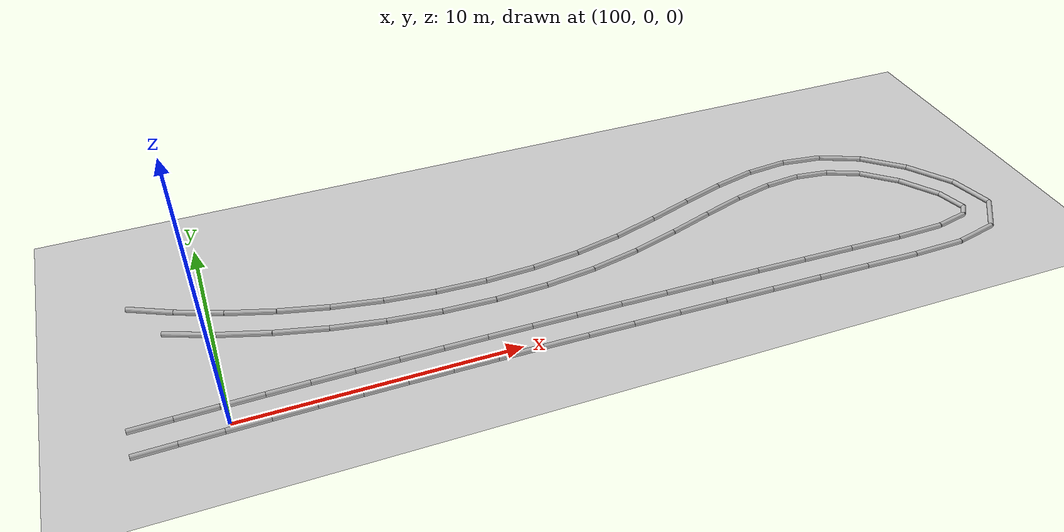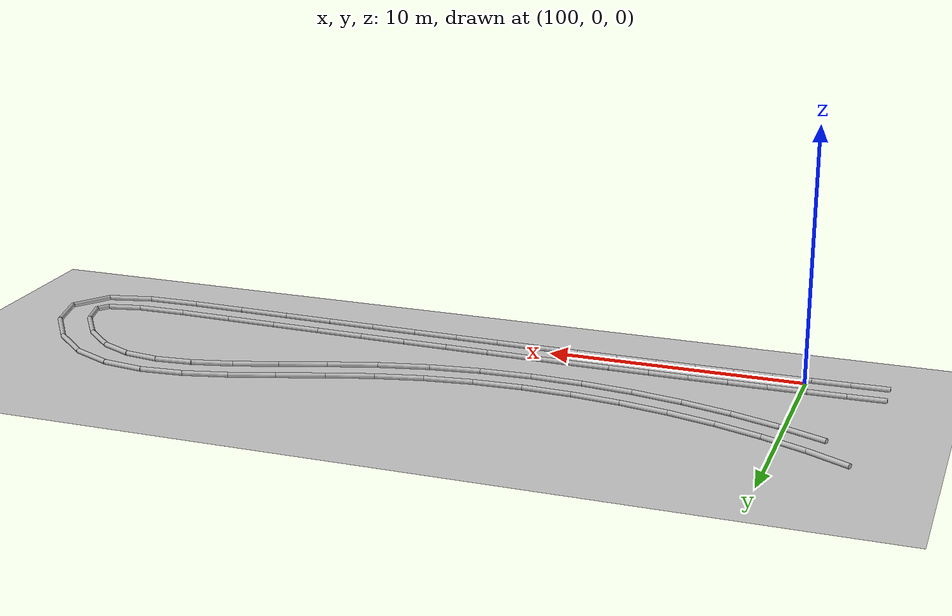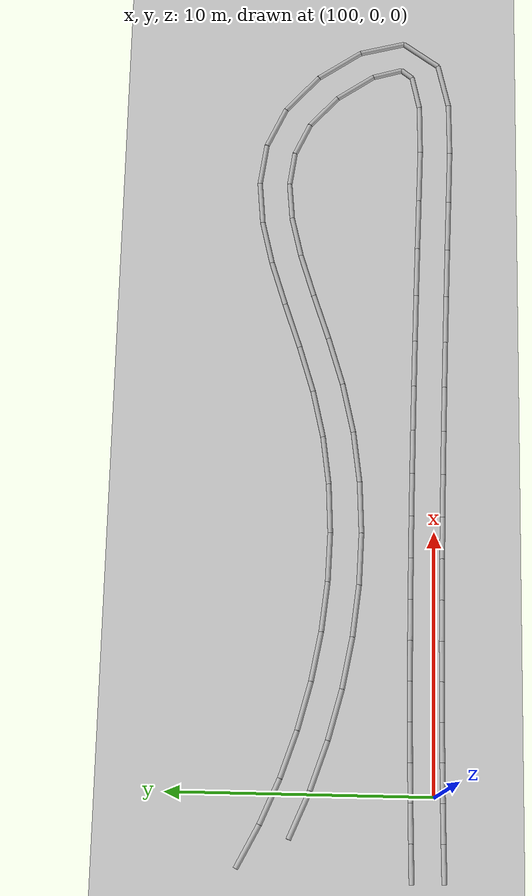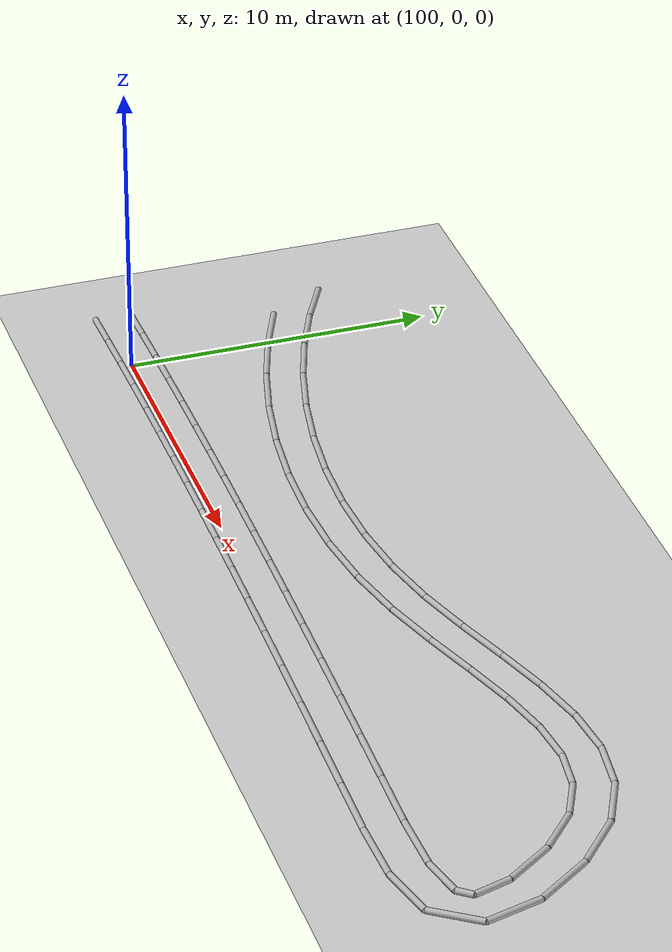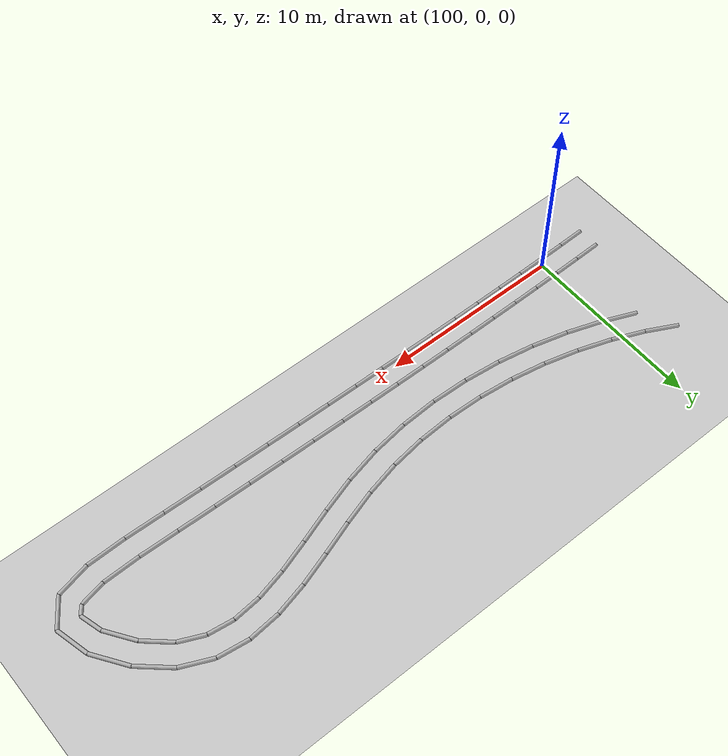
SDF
<sdf version="1.6">
 <world name="default">
  <model name="ground_plane">
   <static>true</static>
   <link name="link">
    <collision name="collision">
     <geometry><plane><normal>0 0 1</normal><size>5000 5000</size></plane></geometry>
     <surface>
      <friction>
       <ode><mu>50</mu></ode>
       <bullet><friction>1</friction><rolling_friction>0.1</rolling_friction></bullet>
      </friction>
     </surface>
    </collision>
    <visual name="visual">
     <geometry><plane><normal>0 0 1</normal><size>5000 5000</size></plane></geometry>
     <material>
      <ambient>0.8 0.8 0.8 1</ambient>
      <diffuse>0.8 0.8 0.8 1</diffuse>
      <specular>0.8 0.8 0.8 1</specular>
     </material>
    </visual>
    <inertial>
     <mass>1</mass>
     <inertia><ixx>1</ixx><ixy>0</ixy><ixz>0</ixz><iyy>1</iyy><iyz>0</iyz><izz>1</izz></inertia>
    </inertial>
   </link>
  </model>
  <model name="line_model">
   <static>true</static>
   <link name="cylinder_(96.88214407625512, -0.37762405332056653)_(98.34170095905127, -0.3479384697803022)">
    <pose>97.6119225176532 -0.36278126155043433 0.05 0 1.5707963267948966 0.02033596059653852</pose>
    <visual name="visual">
     <geometry><cylinder><radius>0.1</radius><length>1.4598587356274375</length></cylinder></geometry>
    </visual>
    <collision name="collision">
     <geometry><cylinder><radius>0.1</radius><length>1.4598587356274375</length></cylinder></geometry>
    </collision>
   </link>
   <link name="cylinder_(98.34170095905127, -0.3479384697803022)_(99.8058994264758, -0.3243952312302968)">
    <pose>99.07380019276354 -0.3361668505052995 0.05 0 1.5707963267948966 0.01607788179667908</pose>
    <visual name="visual">
     <geometry><cylinder><radius>0.1</radius><length>1.4643877342049092</length></cylinder></geometry>
    </visual>
    <collision name="collision">
     <geometry><cylinder><radius>0.1</radius><length>1.4643877342049092</length></cylinder></geometry>
    </collision>
   </link>
   <link name="cylinder_(99.8058994264758, -0.3243952312302968)_(101.27982941718481, -0.30686323552430333)">
    <pose>100.5428644218303 -0.3156292333773001 0.05 0 1.5707963267948966 0.011894166650527716</pose>
    <visual name="visual">
     <geometry><cylinder><radius>0.1</radius><length>1.4740342561775481</length></cylinder></geometry>
    </visual>
    <collision name="collision">
     <geometry><cylinder><radius>0.1</radius><length>1.4740342561775481</length></cylinder></geometry>
    </collision>
   </link>
   <link name="cylinder_(101.27982941718481, -0.30686323552430333)_(102.76857904481969, -0.29521180231533845)">
    <pose>102.02420423100224 -0.3010375189198209 0.05 0 1.5707963267948966 0.007826161708405232</pose>
    <visual name="visual">
     <geometry><cylinder><radius>0.1</radius><length>1.4887952208677993</length></cylinder></geometry>
    </visual>
    <collision name="collision">
     <geometry><cylinder><radius>0.1</radius><length>1.4887952208677993</length></cylinder></geometry>
    </collision>
   </link>
   <link name="cylinder_(102.76857904481969, -0.29521180231533845)_(104.27723386987995, -0.2893106097438739)">
    <pose>103.52290645734982 -0.29226120602960615 0.05 0 1.5707963267948966 0.003911539191771642</pose>
    <visual name="visual">
     <geometry><cylinder><radius>0.1</radius><length>1.508666366447988</length></cylinder></geometry>
    </visual>
    <collision name="collision">
     <geometry><cylinder><radius>0.1</radius><length>1.508666366447988</length></cylinder></geometry>
    </collision>
   </link>
   <link name="cylinder_(104.27723386987995, -0.2893106097438739)_(105.81087634020355, -0.2890296105546082)">
    <pose>105.04405510504175 -0.28917011014924104 0.05 0 1.5707963267948966 0.00018322339890728905</pose>
    <visual name="visual">
     <geometry><cylinder><radius>0.1</radius><length>1.5336424960664123</length></cylinder></geometry>
    </visual>
    <collision name="collision">
     <geometry><cylinder><radius>0.1</radius><length>1.5336424960664123</length></cylinder></geometry>
    </collision>
   </link>
   <link name="cylinder_(105.81087634020355, -0.2890296105546082)_(107.37458542511108, -0.29423893760013436)">
    <pose>106.59273088265732 -0.2916342740773713 0.05 0 1.5707963267948966 -0.0033313791066400004</pose>
    <visual name="visual">
     <geometry><cylinder><radius>0.1</radius><length>1.5637177620371938</length></cylinder></geometry>
    </visual>
    <collision name="collision">
     <geometry><cylinder><radius>0.1</radius><length>1.5637177620371938</length></cylinder></geometry>
    </collision>
   </link>
   <link name="cylinder_(107.37458542511108, -0.29423893760013436)_(108.97343644856046, -0.3048088087025771)">
    <pose>108.17401093683577 -0.29952387315135576 0.05 0 1.5707963267948966 -0.006610820500972128</pose>
    <visual name="visual">
     <geometry><cylinder><radius>0.1</radius><length>1.5988859613369137</length></cylinder></geometry>
    </visual>
    <collision name="collision">
     <geometry><cylinder><radius>0.1</radius><length>1.5988859613369137</length></cylinder></geometry>
    </collision>
   </link>
   <link name="cylinder_(108.97343644856046, -0.3048088087025771)_(110.61250110878882, -0.3206094394555555)">
    <pose>109.79296877867463 -0.31270912407906626 0.05 0 1.5707963267948966 -0.009639730336424077</pose>
    <visual name="visual">
     <geometry><cylinder><radius>0.1</radius><length>1.6391408177279005</length></cylinder></geometry>
    </visual>
    <collision name="collision">
     <geometry><cylinder><radius>0.1</radius><length>1.6391408177279005</length></cylinder></geometry>
    </collision>
   </link>
   <link name="cylinder_(110.61250110878882, -0.3206094394555555)_(112.2968476580367, -0.3415109702252698)">
    <pose>111.45467438341277 -0.33106020484041265 0.05 0 1.5707963267948966 -0.012408644765352111</pose>
    <visual name="visual">
     <geometry><cylinder><radius>0.1</radius><length>1.684476230747038</length></cylinder></geometry>
    </visual>
    <collision name="collision">
     <geometry><cylinder><radius>0.1</radius><length>1.684476230747038</length></cylinder></geometry>
    </collision>
   </link>
   <link name="cylinder_(112.2968476580367, -0.3415109702252698)_(114.03154120718891, -0.36738341090692617)">
    <pose>113.1641944326128 -0.35444719056609797 0.05 0 1.5707963267948966 -0.014913598152648682</pose>
    <visual name="visual">
     <geometry><cylinder><radius>0.1</radius><length>1.7348864783198705</length></cylinder></geometry>
    </visual>
    <collision name="collision">
     <geometry><cylinder><radius>0.1</radius><length>1.7348864783198705</length></cylinder></geometry>
    </collision>
   </link>
   <link name="cylinder_(114.03154120718891, -0.36738341090692617)_(115.82164411662662, -0.39809660441460293)">
    <pose>114.92659266190776 -0.38274000766076455 0.05 0 1.5707963267948966 -0.01715553904425735</pose>
    <visual name="visual">
     <geometry><cylinder><radius>0.1</radius><length>1.7903663665944973</length></cylinder></geometry>
    </visual>
    <collision name="collision">
     <geometry><cylinder><radius>0.1</radius><length>1.7903663665944973</length></cylinder></geometry>
    </collision>
   </link>
   <link name="cylinder_(115.82164411662662, -0.39809660441460293)_(117.67221643557166, -0.4335202077866283)">
    <pose>116.74693027609914 -0.41580840610061565 0.05 0 1.5707963267948966 -0.019139634468451266</pose>
    <visual name="visual">
     <geometry><cylinder><radius>0.1</radius><length>1.850911326704087</length></cylinder></geometry>
    </visual>
    <collision name="collision">
     <geometry><cylinder><radius>0.1</radius><length>1.850911326704087</length></cylinder></geometry>
    </collision>
   </link>
   <link name="cylinder_(117.67221643557166, -0.4335202077866283)_(119.58831635652821, -0.4735236883529746)">
    <pose>118.63026639604993 -0.45352194806980145 0.05 0 1.5707963267948966 -0.020874521997675453</pose>
    <visual name="visual">
     <geometry><cylinder><radius>0.1</radius><length>1.9165174628860382</length></cylinder></geometry>
    </visual>
    <collision name="collision">
     <geometry><cylinder><radius>0.1</radius><length>1.9165174628860382</length></cylinder></geometry>
    </collision>
   </link>
   <link name="cylinder_(119.58831635652821, -0.4735236883529746)_(121.57500065775352, -0.5179763316530697)">
    <pose>120.58165850714087 -0.4957500100030221 0.05 0 1.5707963267948966 -0.0223715600106605</pose>
    <visual name="visual">
     <geometry><cylinder><radius>0.1</radius><length>1.987181559453354</length></cylinder></geometry>
    </visual>
    <collision name="collision">
     <geometry><cylinder><radius>0.1</radius><length>1.987181559453354</length></cylinder></geometry>
    </collision>
   </link>
   <link name="cylinder_(121.57500065775352, -0.5179763316530697)_(123.63732511379524, -0.5667472576146395)">
    <pose>122.60616288577438 -0.5423617946338546 0.05 0 1.5707963267948966 -0.023644115314831623</pose>
    <visual name="visual">
     <geometry><cylinder><radius>0.1</radius><length>2.0629010556027483</length></cylinder></geometry>
    </visual>
    <collision name="collision">
     <geometry><cylinder><radius>0.1</radius><length>2.0629010556027483</length></cylinder></geometry>
    </collision>
   </link>
   <link name="cylinder_(123.63732511379524, -0.5667472576146395)_(125.78112356087561, -0.6178366603438624)">
    <pose>124.70922433733543 -0.592291958979251 0.05 0 1.5707963267948966 -0.023826742846093093</pose>
    <visual name="visual">
     <geometry><cylinder><radius>0.1</radius><length>2.144407122907271</length></cylinder></geometry>
    </visual>
    <collision name="collision">
     <geometry><cylinder><radius>0.1</radius><length>2.144407122907271</length></cylinder></geometry>
    </collision>
   </link>
   <link name="cylinder_(125.78112356087561, -0.6178366603438624)_(127.89645645212491, -0.5730451484775761)">
    <pose>126.83879000650026 -0.5954409044107193 0.05 0 1.5707963267948966 0.021171523168343864</pose>
    <visual name="visual">
     <geometry><cylinder><radius>0.1</radius><length>2.1158070612266067</length></cylinder></geometry>
    </visual>
    <collision name="collision">
     <geometry><cylinder><radius>0.1</radius><length>2.1158070612266067</length></cylinder></geometry>
    </collision>
   </link>
   <link name="cylinder_(127.89645645212491, -0.5730451484775761)_(129.6817796624254, -0.14383697907897117)">
    <pose>128.78911805727518 -0.35844106377827367 0.05 0 1.5707963267948966 0.23593188219633704</pose>
    <visual name="visual">
     <geometry><cylinder><radius>0.1</radius><length>1.8361913347786498</length></cylinder></geometry>
    </visual>
    <collision name="collision">
     <geometry><cylinder><radius>0.1</radius><length>1.8361913347786498</length></cylinder></geometry>
    </collision>
   </link>
   <link name="cylinder_(129.6817796624254, -0.14383697907897117)_(130.66364236745954, 1.270782619576106)">
    <pose>130.17271101494248 0.5634728202485675 0.05 0 1.5707963267948966 0.9640528906943144</pose>
    <visual name="visual">
     <geometry><cylinder><radius>0.1</radius><length>1.7219764749949387</length></cylinder></geometry>
    </visual>
    <collision name="collision">
     <geometry><cylinder><radius>0.1</radius><length>1.7219764749949387</length></cylinder></geometry>
    </collision>
   </link>
   <link name="cylinder_(130.66364236745954, 1.270782619576106)_(130.21157724533143, 3.0610778547621935)">
    <pose>130.43760980639547 2.1659302371691496 0.05 0 1.5707963267948966 1.8181347218721662</pose>
    <visual name="visual">
     <geometry><cylinder><radius>0.1</radius><length>1.8464885333450405</length></cylinder></geometry>
    </visual>
    <collision name="collision">
     <geometry><cylinder><radius>0.1</radius><length>1.8464885333450405</length></cylinder></geometry>
    </collision>
   </link>
   <link name="cylinder_(130.21157724533143, 3.0610778547621935)_(129.05093585215613, 4.774909754591945)">
    <pose>129.63125654874378 3.9179938046770695 0.05 0 1.5707963267948966 2.1660696035708655</pose>
    <visual name="visual">
     <geometry><cylinder><radius>0.1</radius><length>2.0698570541044496</length></cylinder></geometry>
    </visual>
    <collision name="collision">
     <geometry><cylinder><radius>0.1</radius><length>2.0698570541044496</length></cylinder></geometry>
    </collision>
   </link>
   <link name="cylinder_(129.05093585215613, 4.774909754591945)_(127.5732845417734, 6.097777010848196)">
    <pose>128.31211019696477 5.436343382720071 0.05 0 1.5707963267948966 2.411408097916455</pose>
    <visual name="visual">
     <geometry><cylinder><radius>0.1</radius><length>1.983287970202695</length></cylinder></geometry>
    </visual>
    <collision name="collision">
     <geometry><cylinder><radius>0.1</radius><length>1.983287970202695</length></cylinder></geometry>
    </collision>
   </link>
   <link name="cylinder_(127.5732845417734, 6.097777010848196)_(125.96643759129199, 6.84285203955191)">
    <pose>126.7698610665327 6.4703145252000525 0.05 0 1.5707963267948966 2.7074145870735347</pose>
    <visual name="visual">
     <geometry><cylinder><radius>0.1</radius><length>1.7711843271295207</length></cylinder></geometry>
    </visual>
    <collision name="collision">
     <geometry><cylinder><radius>0.1</radius><length>1.7711843271295207</length></cylinder></geometry>
    </collision>
   </link>
   <link name="cylinder_(125.96643759129199, 6.84285203955191)_(124.29264731617415, 7.077410164983204)">
    <pose>125.12954245373308 6.960131102267557 0.05 0 1.5707963267948966 3.002363416006614</pose>
    <visual name="visual">
     <geometry><cylinder><radius>0.1</radius><length>1.6901453781509126</length></cylinder></geometry>
    </visual>
    <collision name="collision">
     <geometry><cylinder><radius>0.1</radius><length>1.6901453781509126</length></cylinder></geometry>
    </collision>
   </link>
   <link name="cylinder_(124.29264731617415, 7.077410164983204)_(122.59406926648981, 6.922670162820596)">
    <pose>123.44335829133198 7.0000401639019 0.05 0 1.5707963267948966 -3.050743692901657</pose>
    <visual name="visual">
     <geometry><cylinder><radius>0.1</radius><length>1.7056118723609868</length></cylinder></geometry>
    </visual>
    <collision name="collision">
     <geometry><cylinder><radius>0.1</radius><length>1.7056118723609868</length></cylinder></geometry>
    </collision>
   </link>
   <link name="cylinder_(122.59406926648981, 6.922670162820596)_(120.87566260818448, 6.505474617164372)">
    <pose>121.73486593733715 6.714072389992484 0.05 0 1.5707963267948966 -2.9034203160265335</pose>
    <visual name="visual">
     <geometry><cylinder><radius>0.1</radius><length>1.7683250737982183</length></cylinder></geometry>
    </visual>
    <collision name="collision">
     <geometry><cylinder><radius>0.1</radius><length>1.7683250737982183</length></cylinder></geometry>
    </collision>
   </link>
   <link name="cylinder_(120.87566260818448, 6.505474617164372)_(119.12994849545089, 5.938243972498735)">
    <pose>120.00280555181769 6.221859294831553 0.05 0 1.5707963267948966 -2.827426266306031</pose>
    <visual name="visual">
     <geometry><cylinder><radius>0.1</radius><length>1.8355566914821877</length></cylinder></geometry>
    </visual>
    <collision name="collision">
     <geometry><cylinder><radius>0.1</radius><length>1.8355566914821877</length></cylinder></geometry>
    </collision>
   </link>
   <link name="cylinder_(119.12994849545089, 5.938243972498735)_(117.3525083056353, 5.323952500630975)">
    <pose>118.2412284005431 5.6310982365648545 0.05 0 1.5707963267948966 -2.8088389288820825</pose>
    <visual name="visual">
     <geometry><cylinder><radius>0.1</radius><length>1.8805976817972392</length></cylinder></geometry>
    </visual>
    <collision name="collision">
     <geometry><cylinder><radius>0.1</radius><length>1.8805976817972392</length></cylinder></geometry>
    </collision>
   </link>
   <link name="cylinder_(117.3525083056353, 5.323952500630975)_(115.54418601672032, 4.761281783702551)">
    <pose>116.44834716117781 5.042617142166764 0.05 0 1.5707963267948966 -2.839932485316587</pose>
    <visual name="visual">
     <geometry><cylinder><radius>0.1</radius><length>1.893839443109013</length></cylinder></geometry>
    </visual>
    <collision name="collision">
     <geometry><cylinder><radius>0.1</radius><length>1.893839443109013</length></cylinder></geometry>
    </collision>
   </link>
   <link name="cylinder_(115.54418601672032, 4.761281783702551)_(113.70356340528409, 4.340110366181804)">
    <pose>114.6238747110022 4.550696074942177 0.05 0 1.5707963267948966 -2.9166451900477237</pose>
    <visual name="visual">
     <geometry><cylinder><radius>0.1</radius><length>1.8881941003685947</length></cylinder></geometry>
    </visual>
    <collision name="collision">
     <geometry><cylinder><radius>0.1</radius><length>1.8881941003685947</length></cylinder></geometry>
    </collision>
   </link>
   <link name="cylinder_(113.70356340528409, 4.340110366181804)_(111.81949316952812, 4.088435412354135)">
    <pose>112.7615282874061 4.21427288926797 0.05 0 1.5707963267948966 -3.0087983269038854</pose>
    <visual name="visual">
     <geometry><cylinder><radius>0.1</radius><length>1.9008053387040236</length></cylinder></geometry>
    </visual>
    <collision name="collision">
     <geometry><cylinder><radius>0.1</radius><length>1.9008053387040236</length></cylinder></geometry>
    </collision>
   </link>
   <link name="cylinder_(111.81949316952812, 4.088435412354135)_(109.90768209212649, 3.999303500268271)">
    <pose>110.86358763082731 4.043869456311203 0.05 0 1.5707963267948966 -3.095004672877772</pose>
    <visual name="visual">
     <geometry><cylinder><radius>0.1</radius><length>1.9138876909128282</length></cylinder></geometry>
    </visual>
    <collision name="collision">
     <geometry><cylinder><radius>0.1</radius><length>1.9138876909128282</length></cylinder></geometry>
    </collision>
   </link>
   <link name="cylinder_(109.90768209212649, 3.999303500268271)_(107.98652220753964, 4.0652212794815785)">
    <pose>108.94710214983306 4.032262389874925 0.05 0 1.5707963267948966 3.107294659860771</pose>
    <visual name="visual">
     <geometry><cylinder><radius>0.1</radius><length>1.922290419203664</length></cylinder></geometry>
    </visual>
    <collision name="collision">
     <geometry><cylinder><radius>0.1</radius><length>1.922290419203664</length></cylinder></geometry>
    </collision>
   </link>
   <link name="cylinder_(107.98652220753964, 4.0652212794815785)_(106.0745752576311, 4.2784508975907665)">
    <pose>107.03054873258537 4.171836088536173 0.05 0 1.5707963267948966 3.030526746693869</pose>
    <visual name="visual">
     <geometry><cylinder><radius>0.1</radius><length>1.9238004078655244</length></cylinder></geometry>
    </visual>
    <collision name="collision">
     <geometry><cylinder><radius>0.1</radius><length>1.9238004078655244</length></cylinder></geometry>
    </collision>
   </link>
   <link name="cylinder_(106.0745752576311, 4.2784508975907665)_(104.1904945715348, 4.631012509128226)">
    <pose>105.13253491458295 4.454731703359496 0.05 0 1.5707963267948966 2.956605447174103</pose>
    <visual name="visual">
     <geometry><cylinder><radius>0.1</radius><length>1.9167836919305694</length></cylinder></geometry>
    </visual>
    <collision name="collision">
     <geometry><cylinder><radius>0.1</radius><length>1.9167836919305694</length></cylinder></geometry>
    </collision>
   </link>
   <link name="cylinder_(104.1904945715348, 4.631012509128226)_(102.35297635803207, 5.114691320290366)">
    <pose>103.27173546478343 4.872851914709296 0.05 0 1.5707963267948966 2.884207158068229</pose>
    <visual name="visual">
     <geometry><cylinder><radius>0.1</radius><length>1.9001100961053539</length></cylinder></geometry>
    </visual>
    <collision name="collision">
     <geometry><cylinder><radius>0.1</radius><length>1.9001100961053539</length></cylinder></geometry>
    </collision>
   </link>
   <link name="cylinder_(102.35297635803207, 5.114691320290366)_(100.5807294772425, 5.721036594928918)">
    <pose>101.46685291763728 5.417863957609642 0.05 0 1.5707963267948966 2.8119428435357023</pose>
    <visual name="visual">
     <geometry><cylinder><radius>0.1</radius><length>1.8731026663119268</length></cylinder></geometry>
    </visual>
    <collision name="collision">
     <geometry><cylinder><radius>0.1</radius><length>1.8731026663119268</length></cylinder></geometry>
    </collision>
   </link>
   <link name="cylinder_(100.5807294772425, 5.721036594928918)_(98.89245187395298, 6.441345334439175)">
    <pose>99.73659067559774 6.081190964684047 0.05 0 1.5707963267948966 2.7383227161611647</pose>
    <visual name="visual">
     <geometry><cylinder><radius>0.1</radius><length>1.8355178958495237</length></cylinder></geometry>
    </visual>
    <collision name="collision">
     <geometry><cylinder><radius>0.1</radius><length>1.8355178958495237</length></cylinder></geometry>
    </collision>
   </link>
   <link name="cylinder_(98.89245187395298, 6.441345334439175)_(97.30680030457754, 7.2666266332350276)">
    <pose>98.09962608926526 6.853985983837101 0.05 0 1.5707963267948966 2.6617048468655846</pose>
    <visual name="visual">
     <geometry><cylinder><radius>0.1</radius><length>1.7875626203310964</length></cylinder></geometry>
    </visual>
    <collision name="collision">
     <geometry><cylinder><radius>0.1</radius><length>1.7875626203310964</length></cylinder></geometry>
    </collision>
   </link>
   <link name="cylinder_(96.85517180297238, 0.8220727819148863)_(98.31986310493626, 0.8518628088186381)">
    <pose>97.58751745395432 0.8369677953667622 0.05 0 1.5707963267948966 0.02033597125772061</pose>
    <visual name="visual">
     <geometry><cylinder><radius>0.1</radius><length>1.4649942169686463</length></cylinder></geometry>
    </visual>
    <collision name="collision">
     <geometry><cylinder><radius>0.1</radius><length>1.4649942169686463</length></cylinder></geometry>
    </collision>
   </link>
   <link name="cylinder_(98.31986310493626, 0.8518628088186381)_(99.78913311914361, 0.8754876342771839)">
    <pose>99.05449811203994 0.863675221547911 0.05 0 1.5707963267948966 0.016077909117576276</pose>
    <visual name="visual">
     <geometry><cylinder><radius>0.1</radius><length>1.469459937196936</length></cylinder></geometry>
    </visual>
    <collision name="collision">
     <geometry><cylinder><radius>0.1</radius><length>1.469459937196936</length></cylinder></geometry>
    </collision>
   </link>
   <link name="cylinder_(99.78913311914361, 0.8754876342771839)_(101.2680204281697, 0.8930786579765616)">
    <pose>100.52857677365665 0.8842831461268728 0.05 0 1.5707963267948966 0.011894208596737163</pose>
    <visual name="visual">
     <geometry><cylinder><radius>0.1</radius><length>1.4789919259121154</length></cylinder></geometry>
    </visual>
    <collision name="collision">
     <geometry><cylinder><radius>0.1</radius><length>1.4789919259121154</length></cylinder></geometry>
    </collision>
   </link>
   <link name="cylinder_(101.2680204281697, 0.8930786579765616)_(102.76156543960435, 0.9047677014020724)">
    <pose>102.01479293388704 0.898923179689317 0.05 0 1.5707963267948966 0.007826215269794</pose>
    <visual name="visual">
     <geometry><cylinder><radius>0.1</radius><length>1.4935907521531882</length></cylinder></geometry>
    </visual>
    <collision name="collision">
     <geometry><cylinder><radius>0.1</radius><length>1.4935907521531882</length></cylinder></geometry>
    </collision>
   </link>
   <link name="cylinder_(102.76156543960435, 0.9047677014020724)_(104.27481111417933, 0.9106869445264734)">
    <pose>103.51818827689183 0.9077273229642728 0.05 0 1.5707963267948966 0.003911600762822864</pose>
    <visual name="visual">
     <geometry><cylinder><radius>0.1</radius><length>1.5132572514476963</length></cylinder></geometry>
    </visual>
    <collision name="collision">
     <geometry><cylinder><radius>0.1</radius><length>1.5132572514476963</length></cylinder></geometry>
    </collision>
   </link>
   <link name="cylinder_(104.27481111417933, 0.9106869445264734)_(105.81280352528798, 0.9109688419267483)">
    <pose>105.04380731973365 0.9108278932266108 0.05 0 1.5707963267948966 0.00018328919901170238</pose>
    <visual name="visual">
     <geometry><cylinder><radius>0.1</radius><length>1.5379924369430211</length></cylinder></geometry>
    </visual>
    <collision name="collision">
     <geometry><cylinder><radius>0.1</radius><length>1.5379924369430211</length></cylinder></geometry>
    </collision>
   </link>
   <link name="cylinder_(105.81280352528798, 0.9109688419267483)_(107.38059222484094, 0.9057460282877743)">
    <pose>106.59669787506445 0.9083574351072613 0.05 0 1.5707963267948966 -0.0033313126444528248</pose>
    <visual name="visual">
     <geometry><cylinder><radius>0.1</radius><length>1.567797398973566</length></cylinder></geometry>
    </visual>
    <collision name="collision">
     <geometry><cylinder><radius>0.1</radius><length>1.567797398973566</length></cylinder></geometry>
    </collision>
   </link>
   <link name="cylinder_(107.38059222484094, 0.9057460282877743)_(108.98323041011153, 0.8951512232639616)">
    <pose>108.18191131747624 0.9004486257758679 0.05 0 1.5707963267948966 -0.006610756427947426</pose>
    <visual name="visual">
     <geometry><cylinder><radius>0.1</radius><length>1.6026732052358368</length></cylinder></geometry>
    </visual>
    <collision name="collision">
     <geometry><cylinder><radius>0.1</radius><length>1.6026732052358368</length></cylinder></geometry>
    </collision>
   </link>
   <link name="cylinder_(108.98323041011153, 0.8951512232639616)_(110.62577490409403, 0.8793171442812143)">
    <pose>109.80450265710277 0.8872341837725879 0.05 0 1.5707963267948966 -0.009639671002105953</pose>
    <visual name="visual">
     <geometry><cylinder><radius>0.1</radius><length>1.6426208122294852</length></cylinder></geometry>
    </visual>
    <collision name="collision">
     <geometry><cylinder><radius>0.1</radius><length>1.6426208122294852</length></cylinder></geometry>
    </collision>
   </link>
   <link name="cylinder_(110.62577490409403, 0.8793171442812143)_(112.31328597577901, 0.858376433538018)">
    <pose>111.46953043993652 0.8688467889096161 0.05 0 1.5707963267948966 -0.012408591750568784</pose>
    <visual name="visual">
     <geometry><cylinder><radius>0.1</radius><length>1.687640995717342</length></cylinder></geometry>
    </visual>
    <collision name="collision">
     <geometry><cylinder><radius>0.1</radius><length>1.687640995717342</length></cylinder></geometry>
    </collision>
   </link>
   <link name="cylinder_(112.31328597577901, 0.858376433538018)_(114.05082703551298, 0.8324616027618623)">
    <pose>113.18205650564599 0.8454190181499401 0.05 0 1.5707963267948966 -0.014913552303359704</pose>
    <visual name="visual">
     <geometry><cylinder><radius>0.1</radius><length>1.7377343044077846</length></cylinder></geometry>
    </visual>
    <collision name="collision">
     <geometry><cylinder><radius>0.1</radius><length>1.7377343044077846</length></cylinder></geometry>
    </collision>
   </link>
   <link name="cylinder_(114.05082703551298, 0.8324616027618623)_(115.84346424414608, 0.8017049966991122)">
    <pose>114.94714563982953 0.8170832997304873 0.05 0 1.5707963267948966 -0.01715550057622441</pose>
    <visual name="visual">
     <geometry><cylinder><radius>0.1</radius><length>1.792901037590295</length></cylinder></geometry>
    </visual>
    <collision name="collision">
     <geometry><cylinder><radius>0.1</radius><length>1.792901037590295</length></cylinder></geometry>
    </collision>
   </link>
   <link name="cylinder_(115.84346424414608, 0.8017049966991122)_(117.69626607368767, 0.7662387742203789)">
    <pose>116.76986515891687 0.7839718854597455 0.05 0 1.5707963267948966 -0.01913960310986518</pose>
    <visual name="visual">
     <geometry><cylinder><radius>0.1</radius><length>1.8531412446140136</length></cylinder></geometry>
    </visual>
    <collision name="collision">
     <geometry><cylinder><radius>0.1</radius><length>1.8531412446140136</length></cylinder></geometry>
    </collision>
   </link>
   <link name="cylinder_(117.69626607368767, 0.7662387742203789)_(119.61430285286494, 0.726194904487922)">
    <pose>118.6552844632763 0.7462168393541504 0.05 0 1.5707963267948966 -0.020874497140899742</pose>
    <visual name="visual">
     <geometry><cylinder><radius>0.1</radius><length>1.918454742176596</length></cylinder></geometry>
    </visual>
    <collision name="collision">
     <geometry><cylinder><radius>0.1</radius><length>1.918454742176596</length></cylinder></geometry>
    </collision>
   </link>
   <link name="cylinder_(119.61430285286494, 0.726194904487922)_(121.60264632465183, 0.6817051748734537)">
    <pose>120.60847458875838 0.7039500396806879 0.05 0 1.5707963267948966 -0.022371540852011203</pose>
    <visual name="visual">
     <geometry><cylinder><radius>0.1</radius><length>1.9888411444453564</length></cylinder></geometry>
    </visual>
    <collision name="collision">
     <geometry><cylinder><radius>0.1</radius><length>1.9888411444453564</length></cylinder></geometry>
    </collision>
   </link>
   <link name="cylinder_(121.60264632465183, 0.6817051748734537)_(123.66636923573193, 0.6329012071369838)">
    <pose>122.63450778019188 0.6573031910052187 0.05 0 1.5707963267948966 -0.023644100970001646</pose>
    <visual name="visual">
     <geometry><cylinder><radius>0.1</radius><length>2.064299900931008</length></cylinder></geometry>
    </visual>
    <collision name="collision">
     <geometry><cylinder><radius>0.1</radius><length>2.064299900931008</length></cylinder></geometry>
    </collision>
   </link>
   <link name="cylinder_(123.66636923573193, 0.6329012071369838)_(125.80280106997095, 0.5819675260129872)">
    <pose>124.73458515285145 0.6074343665749855 0.05 0 1.5707963267948966 -0.0238360212817608</pose>
    <visual name="visual">
     <geometry><cylinder><radius>0.1</radius><length>2.1370388911348197</length></cylinder></geometry>
    </visual>
    <collision name="collision">
     <geometry><cylinder><radius>0.1</radius><length>2.1370388911348197</length></cylinder></geometry>
    </collision>
   </link>
   <link name="cylinder_(125.80280106997095, 0.5819675260129872)_(127.79202067644137, 0.6224017005112771)">
    <pose>126.79741087320616 0.6021846132621321 0.05 0 1.5707963267948966 0.020323853123188563</pose>
    <visual name="visual">
     <geometry><cylinder><radius>0.1</radius><length>1.9896305097262823</length></cylinder></geometry>
    </visual>
    <collision name="collision">
     <geometry><cylinder><radius>0.1</radius><length>1.9896305097262823</length></cylinder></geometry>
    </collision>
   </link>
   <link name="cylinder_(127.79202067644137, 0.6224017005112771)_(129.13318766715756, 0.9234243866267441)">
    <pose>128.46260417179946 0.7729130435690106 0.05 0 1.5707963267948966 0.22078928921188365</pose>
    <visual name="visual">
     <geometry><cylinder><radius>0.1</radius><length>1.3745339408479116</length></cylinder></geometry>
    </visual>
    <collision name="collision">
     <geometry><cylinder><radius>0.1</radius><length>1.3745339408479116</length></cylinder></geometry>
    </collision>
   </link>
   <link name="cylinder_(129.13318766715756, 0.9234243866267441)_(129.46676842634707, 1.3573434021850423)">
    <pose>129.2999780467523 1.1403838944058933 0.05 0 1.5707963267948966 0.9153948253349414</pose>
    <visual name="visual">
     <geometry><cylinder><radius>0.1</radius><length>0.5473224232246808</length></cylinder></geometry>
    </visual>
    <collision name="collision">
     <geometry><cylinder><radius>0.1</radius><length>0.5473224232246808</length></cylinder></geometry>
    </collision>
   </link>
   <link name="cylinder_(129.46676842634707, 1.3573434021850423)_(129.13697369134573, 2.5270111906075394)">
    <pose>129.30187105884642 1.9421772963962909 0.05 0 1.5707963267948966 1.8456178135896846</pose>
    <visual name="visual">
     <geometry><cylinder><radius>0.1</radius><length>1.2152725219092964</length></cylinder></geometry>
    </visual>
    <collision name="collision">
     <geometry><cylinder><radius>0.1</radius><length>1.2152725219092964</length></cylinder></geometry>
    </collision>
   </link>
   <link name="cylinder_(129.13697369134573, 2.5270111906075394)_(128.14434138982742, 3.9887249920361696)">
    <pose>128.64065754058657 3.2578680913218543 0.05 0 1.5707963267948966 2.1673490877891024</pose>
    <visual name="visual">
     <geometry><cylinder><radius>0.1</radius><length>1.7668973154386984</length></cylinder></geometry>
    </visual>
    <collision name="collision">
     <geometry><cylinder><radius>0.1</radius><length>1.7668973154386984</length></cylinder></geometry>
    </collision>
   </link>
   <link name="cylinder_(128.14434138982742, 3.9887249920361696)_(126.90991773566316, 5.097804770957962)">
    <pose>127.52712956274529 4.543264881497066 0.05 0 1.5707963267948966 2.4096292553046235</pose>
    <visual name="visual">
     <geometry><cylinder><radius>0.1</radius><length>1.6594757346744957</length></cylinder></geometry>
    </visual>
    <collision name="collision">
     <geometry><cylinder><radius>0.1</radius><length>1.6594757346744957</length></cylinder></geometry>
    </collision>
   </link>
   <link name="cylinder_(126.90991773566316, 5.097804770957962)_(125.63618098105201, 5.689192396766052)">
    <pose>126.27304935835758 5.393498583862007 0.05 0 1.5707963267948966 2.706916078677872</pose>
    <visual name="visual">
     <geometry><cylinder><radius>0.1</radius><length>1.4043306747366426</length></cylinder></geometry>
    </visual>
    <collision name="collision">
     <geometry><cylinder><radius>0.1</radius><length>1.4043306747366426</length></cylinder></geometry>
    </collision>
   </link>
   <link name="cylinder_(125.63618098105201, 5.689192396766052)_(124.27999571797939, 5.877476859726984)">
    <pose>124.95808834951569 5.783334628246518 0.05 0 1.5707963267948966 3.0036405975356315</pose>
    <visual name="visual">
     <geometry><cylinder><radius>0.1</radius><length>1.369193012970718</length></cylinder></geometry>
    </visual>
    <collision name="collision">
     <geometry><cylinder><radius>0.1</radius><length>1.369193012970718</length></cylinder></geometry>
    </collision>
   </link>
   <link name="cylinder_(124.27999571797939, 5.877476859726984)_(122.80568573848328, 5.7414765001297425)">
    <pose>123.54284072823134 5.8094766799283635 0.05 0 1.5707963267948966 -3.049606195162002</pose>
    <visual name="visual">
     <geometry><cylinder><radius>0.1</radius><length>1.4805694895723087</length></cylinder></geometry>
    </visual>
    <collision name="collision">
     <geometry><cylinder><radius>0.1</radius><length>1.4805694895723087</length></cylinder></geometry>
    </collision>
   </link>
   <link name="cylinder_(122.80568573848328, 5.7414765001297425)_(121.21477121872582, 5.354385849841571)">
    <pose>122.01022847860455 5.547931174985656 0.05 0 1.5707963267948966 -2.902917195747939</pose>
    <visual name="visual">
     <geometry><cylinder><radius>0.1</radius><length>1.6373295882978585</length></cylinder></geometry>
    </visual>
    <collision name="collision">
     <geometry><cylinder><radius>0.1</radius><length>1.6373295882978585</length></cylinder></geometry>
    </collision>
   </link>
   <link name="cylinder_(121.21477121872582, 5.354385849841571)_(119.52121034662214, 4.803821580345776)">
    <pose>120.36799078267398 5.079103715093673 0.05 0 1.5707963267948966 -2.827276916565274</pose>
    <visual name="visual">
     <geometry><cylinder><radius>0.1</radius><length>1.7808058407266067</length></cylinder></geometry>
    </visual>
    <collision name="collision">
     <geometry><cylinder><radius>0.1</radius><length>1.7808058407266067</length></cylinder></geometry>
    </collision>
   </link>
   <link name="cylinder_(119.52121034662214, 4.803821580345776)_(117.73590108693368, 4.186846535802593)">
    <pose>118.62855571677791 4.495334058074184 0.05 0 1.5707963267948966 -2.8088569490088466</pose>
    <visual name="visual">
     <geometry><cylinder><radius>0.1</radius><length>1.88891168621469</length></cylinder></geometry>
    </visual>
    <collision name="collision">
     <geometry><cylinder><radius>0.1</radius><length>1.88891168621469</length></cylinder></geometry>
    </collision>
   </link>
   <link name="cylinder_(117.73590108693368, 4.186846535802593)_(115.86447880378569, 3.604816250038062)">
    <pose>116.80018994535968 3.895831392920327 0.05 0 1.5707963267948966 -2.8400661677395704</pose>
    <visual name="visual">
     <geometry><cylinder><radius>0.1</radius><length>1.9598419873576511</length></cylinder></geometry>
    </visual>
    <collision name="collision">
     <geometry><cylinder><radius>0.1</radius><length>1.9598419873576511</length></cylinder></geometry>
    </collision>
   </link>
   <link name="cylinder_(115.86447880378569, 3.604816250038062)_(113.91605016395417, 3.159072950436701)">
    <pose>114.89026448386993 3.3819446002373814 0.05 0 1.5707963267948966 -2.9166921570313336</pose>
    <visual name="visual">
     <geometry><cylinder><radius>0.1</radius><length>1.9987649320656025</length></cylinder></geometry>
    </visual>
    <collision name="collision">
     <geometry><cylinder><radius>0.1</radius><length>1.9987649320656025</length></cylinder></geometry>
    </collision>
   </link>
   <link name="cylinder_(113.91605016395417, 3.159072950436701)_(111.92586434570197, 2.893159221308989)">
    <pose>112.92095725482807 3.026116085872845 0.05 0 1.5707963267948966 -3.00876682786285</pose>
    <visual name="visual">
     <geometry><cylinder><radius>0.1</radius><length>2.0078719337922895</length></cylinder></geometry>
    </visual>
    <collision name="collision">
     <geometry><cylinder><radius>0.1</radius><length>2.0078719337922895</length></cylinder></geometry>
    </collision>
   </link>
   <link name="cylinder_(111.92586434570197, 2.893159221308989)_(109.91414467385746, 2.7993209024622154)">
    <pose>110.92000450977972 2.8462400618856023 0.05 0 1.5707963267948966 -3.0949806181046364</pose>
    <visual name="visual">
     <geometry><cylinder><radius>0.1</radius><length>2.0139070654253497</length></cylinder></geometry>
    </visual>
    <collision name="collision">
     <geometry><cylinder><radius>0.1</radius><length>2.0139070654253497</length></cylinder></geometry>
    </collision>
   </link>
   <link name="cylinder_(109.91414467385746, 2.7993209024622154)_(107.89869031675315, 2.868439946505135)">
    <pose>108.9064174953053 2.8338804244836755 0.05 0 1.5707963267948966 3.107311566743277</pose>
    <visual name="visual">
     <geometry><cylinder><radius>0.1</radius><length>2.016639211118386</length></cylinder></geometry>
    </visual>
    <collision name="collision">
     <geometry><cylinder><radius>0.1</radius><length>2.016639211118386</length></cylinder></geometry>
    </collision>
   </link>
   <link name="cylinder_(107.89869031675315, 2.868439946505135)_(105.89713073531804, 3.0916428080071547)">
    <pose>106.89791052603559 2.980041377256145 0.05 0 1.5707963267948966 3.0305370074316675</pose>
    <visual name="visual">
     <geometry><cylinder><radius>0.1</radius><length>2.0139663044394154</length></cylinder></geometry>
    </visual>
    <collision name="collision">
     <geometry><cylinder><radius>0.1</radius><length>2.0139663044394154</length></cylinder></geometry>
    </collision>
   </link>
   <link name="cylinder_(105.89713073531804, 3.0916428080071547)_(103.92700380321097, 3.460297934602002)">
    <pose>104.9120672692645 3.2759703713045782 0.05 0 1.5707963267948966 2.9566093833669282</pose>
    <visual name="visual">
     <geometry><cylinder><radius>0.1</radius><length>2.004322012795926</length></cylinder></geometry>
    </visual>
    <collision name="collision">
     <geometry><cylinder><radius>0.1</radius><length>2.004322012795926</length></cylinder></geometry>
    </collision>
   </link>
   <link name="cylinder_(103.92700380321097, 3.460297934602002)_(102.00580451444328, 3.9660087222594003)">
    <pose>102.96640415882712 3.7131533284307014 0.05 0 1.5707963267948966 2.8842046691977368</pose>
    <visual name="visual">
     <geometry><cylinder><radius>0.1</radius><length>1.9866429241095418</length></cylinder></geometry>
    </visual>
    <collision name="collision">
     <geometry><cylinder><radius>0.1</radius><length>1.9866429241095418</length></cylinder></geometry>
    </collision>
   </link>
   <link name="cylinder_(102.00580451444328, 3.9660087222594003)_(100.15101521168822, 4.600614509293709)">
    <pose>101.07840986306576 4.2833116157765545 0.05 0 1.5707963267948966 2.811933203542335</pose>
    <visual name="visual">
     <geometry><cylinder><radius>0.1</radius><length>1.9603489134723076</length></cylinder></geometry>
    </visual>
    <collision name="collision">
     <geometry><cylinder><radius>0.1</radius><length>1.9603489134723076</length></cylinder></geometry>
    </collision>
   </link>
   <link name="cylinder_(100.15101521168822, 4.600614509293709)_(98.38012915295153, 5.356206896475759)">
    <pose>99.26557218231987 4.978410702884734 0.05 0 1.5707963267948966 2.738304323523772</pose>
    <visual name="visual">
     <geometry><cylinder><radius>0.1</radius><length>1.92534601788755</length></cylinder></geometry>
    </visual>
    <collision name="collision">
     <geometry><cylinder><radius>0.1</radius><length>1.92534601788755</length></cylinder></geometry>
    </collision>
   </link>
  </model>
 </world>
</sdf>
